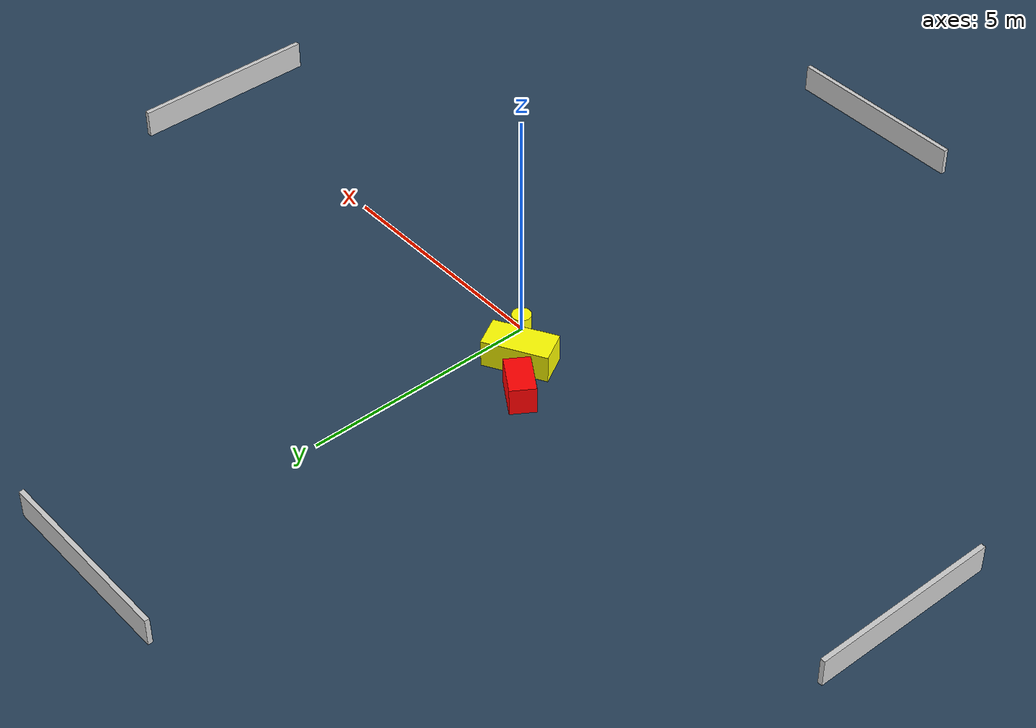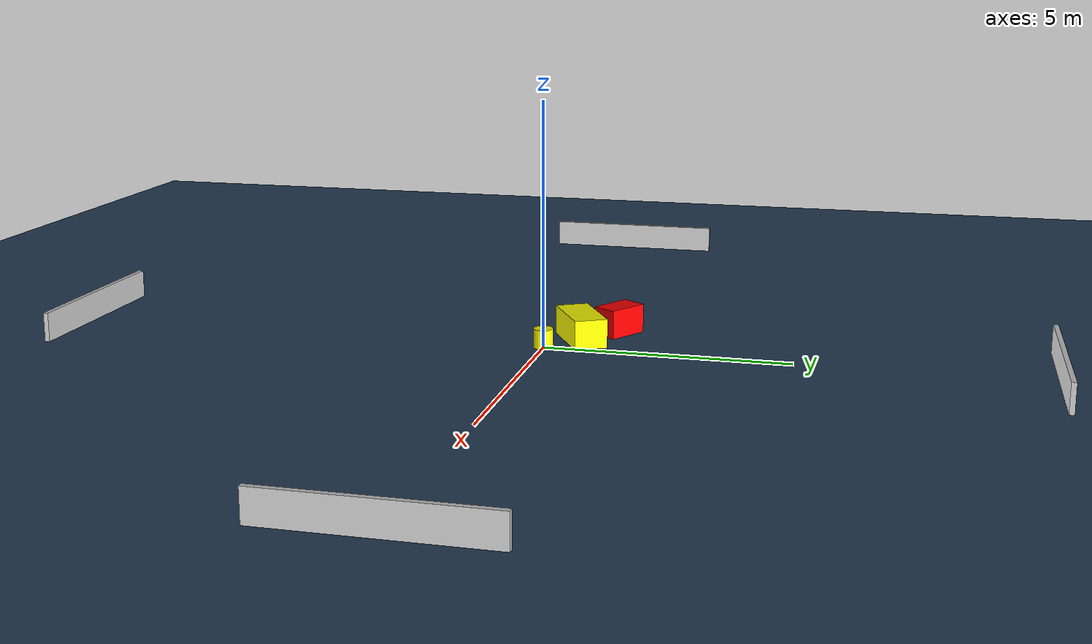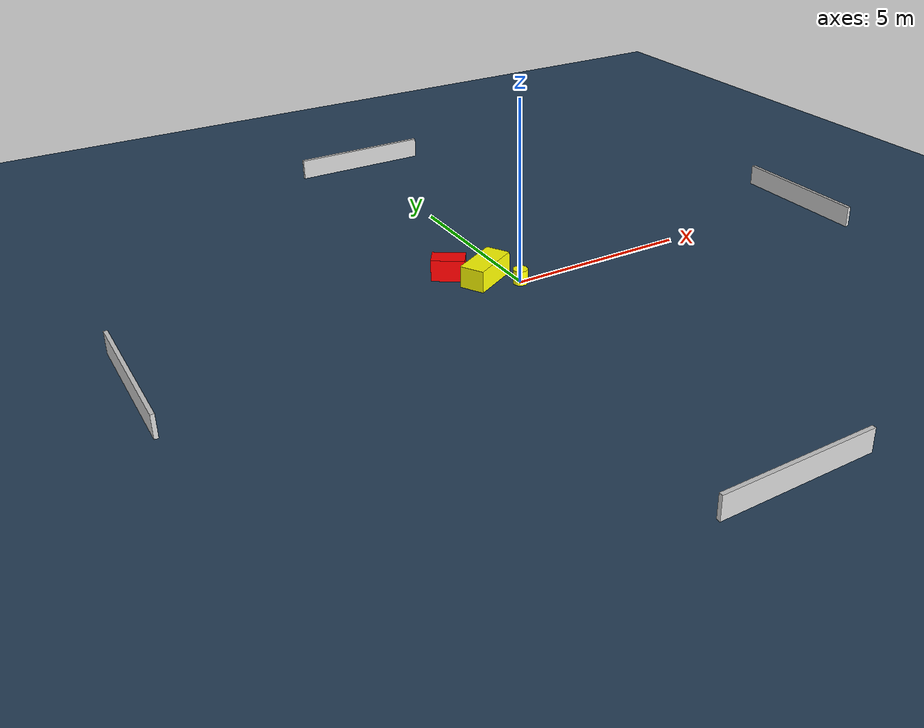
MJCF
<?xml version="1.0" ?>
<mujoco model="generated_environment">
  <option timestep="0.01" integrator="RK4" cone="elliptic"/>
  <default>
    <geom density="1"/>
  </default>
  <asset>
    <texture builtin="gradient" height="3072" name="skybox" rgb1="0.3 0.5 0.7" rgb2="0 0 0" type="skybox" width="512"/>
    <texture builtin="checker" height="300" name="groundplane" rgb1="0.2 0.3 0.4" rgb2="0.1 0.2 0.3" type="2d" width="300"/>
    <material name="groundplane" reflectance="0.2" texrepeat="5 5" texture="groundplane"/>
  </asset>
  <worldbody>
    <light dir="0 0 -1" directional="true" pos="0 0 1.5"/>
    <geom condim="3" friction="0.5 0.005 0.001" material="groundplane" name="floor" pos="0 0 0" size="0 0 0.05" type="plane"/>
    <body name="walls">
      <geom name="wall_1" condim="4" pos="-10.0 0.0 0.3" rgba="0.800000011920929 0.800000011920929 0.800000011920929 1.0" size="0.05 2.0 0.3" type="box"/>
      <geom name="wall_2" condim="4" pos="10.0 0.0 0.3" rgba="0.800000011920929 0.800000011920929 0.800000011920929 1.0" size="0.05 2.0 0.3" type="box"/>
      <geom name="wall_3" condim="4" pos="0.0 -10.0 0.3" rgba="0.800000011920929 0.800000011920929 0.800000011920929 1.0" size="2.0 0.05 0.3" type="box"/>
      <geom name="wall_4" condim="4" pos="0.0 10.0 0.3" rgba="0.800000011920929 0.800000011920929 0.800000011920929 1.0" size="2.0 0.05 0.3" type="box"/>
    </body>
    <body name="robot">
      <joint name="joint_x" type="slide" pos="0 0 0" axis="1 0 0"/>
      <joint name="joint_y" type="slide" pos="0 0 0" axis="0 1 0"/>
      <geom name="robot" type="cylinder" pos="0.0 0.0 0.2" size="0.2 0.2 0.0" mass="5.0" friction="1.0 0.005 0.0001" condim="4" rgba="1.0 1.0 0.0 1.0"/>
    </body>
    <body name="obstacle_1_movable">
      <geom name="obstacle_1_movable" condim="4" pos="-0.6960393174230235 0.6293218432880648 0.3" euler="0 0 119.24654152138129" friction="0.0 0.005 0.001" rgba="1.0 1.0 0.0 1.0" size="0.3421245184500009 0.6855864425865263 0.3" type="box" mass="0.1"/>
      <joint type="free"/>
    </body>
    <body name="obstacle_2_static">
      <geom name="obstacle_2_static" condim="4" pos="-1.437453489975265 1.2739052891863722 0.3" euler="0 0 57.02800307416406" friction="0.0 0.005 0.001" rgba="1.0 0.0 0.0 1.0" size="0.26706662432002426 0.44967683904297534 0.3" type="box"/>
    </body>
  </worldbody>
  <actuator>
    <motor name="actuator_x" joint="joint_x" gear="1" ctrlrange="-1 1"/>
    <motor name="actuator_y" joint="joint_y" gear="1" ctrlrange="-1 1"/>
  </actuator>
</mujoco>
